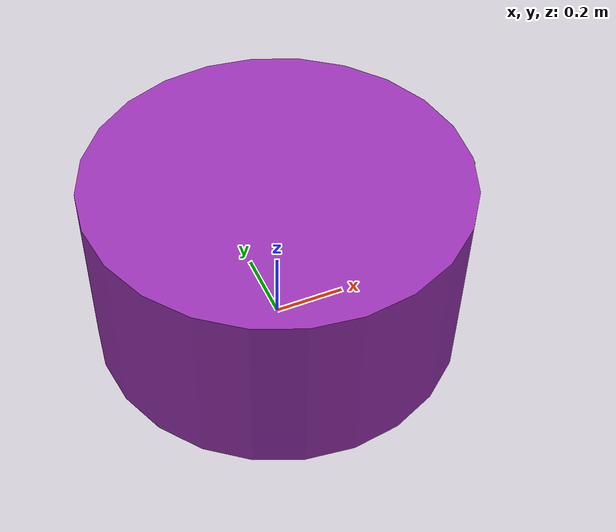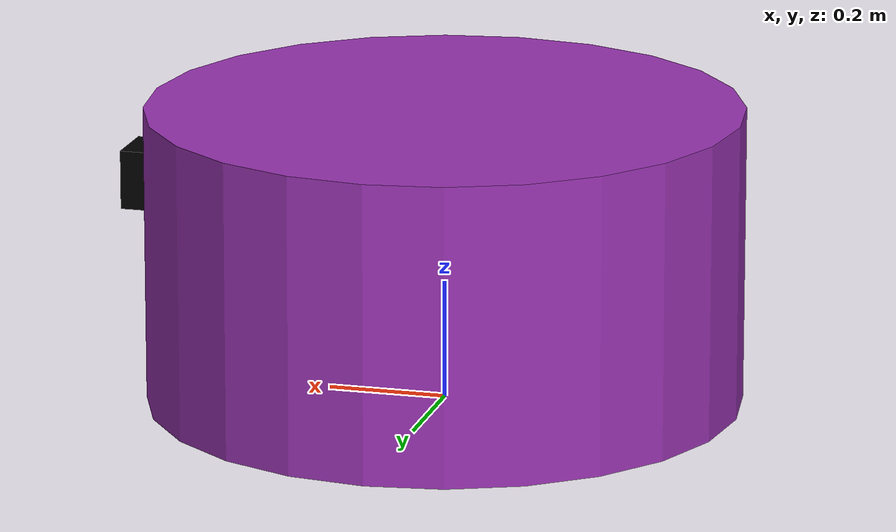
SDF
<?xml version='1.0'?>
<sdf version='1.7'>
  <model name='Dash'>
    <link name='Cyl1'>
      <inertial>
        <mass>1</mass>
        <inertia>
          <ixx>0.145833</ixx>
          <ixy>0</ixy>
          <ixz>0</ixz>
          <iyy>0.145833</iyy>
          <iyz>0</iyz>
          <izz>0.125</izz>
        </inertia>
        <pose>0 0 0 0 -0 0</pose>
      </inertial>
      <pose>0 0 0.25 0 -0 0</pose>
      <gravity>1</gravity>
      <self_collide>0</self_collide>
      <kinematic>0</kinematic>
      <enable_wind>0</enable_wind>
      <visual name='visual'>
        <pose>0 0 0 0 -0 0</pose>
        <geometry>
          <cylinder>
            <radius>0.5</radius>
            <length>0.5</length>
          </cylinder>
        </geometry>
        <material>
          <script>
            <uri>file://media/materials/scripts/gazebo.material</uri>
            <name>Gazebo/Purple</name>
          </script>
          <shader type='pixel'>
            <normal_map>__default__</normal_map>
          </shader>
          <ambient>1 0 1 1</ambient>
          <diffuse>1 0 1 1</diffuse>
          <specular>0.1 0.1 0.1 1</specular>
          <emissive>0 0 0 1</emissive>
        </material>
        <transparency>0</transparency>
        <cast_shadows>1</cast_shadows>
      </visual>
      <collision name='collision'>
        <laser_retro>0</laser_retro>
        <max_contacts>10</max_contacts>
        <pose>0 0 0 0 -0 0</pose>
        <geometry>
          <cylinder>
            <radius>0.5</radius>
            <length>0.5</length>
          </cylinder>
        </geometry>
        <surface>
          <friction>
            <ode>
              <mu>1</mu>
              <mu2>1</mu2>
              <fdir1>0 0 0</fdir1>
              <slip1>0</slip1>
              <slip2>0</slip2>
            </ode>
            <torsional>
              <coefficient>1</coefficient>
              <patch_radius>0</patch_radius>
              <surface_radius>0</surface_radius>
              <use_patch_radius>1</use_patch_radius>
              <ode>
                <slip>0</slip>
              </ode>
            </torsional>
          </friction>
          <bounce>
            <restitution_coefficient>0</restitution_coefficient>
            <threshold>1e+06</threshold>
          </bounce>
          <contact>
            <collide_without_contact>0</collide_without_contact>
            <collide_without_contact_bitmask>1</collide_without_contact_bitmask>
            <collide_bitmask>1</collide_bitmask>
            <ode>
              <soft_cfm>0</soft_cfm>
              <soft_erp>0.2</soft_erp>
              <kp>1e+13</kp>
              <kd>1</kd>
              <max_vel>0.01</max_vel>
              <min_depth>0</min_depth>
            </ode>
            <bullet>
              <split_impulse>1</split_impulse>
              <split_impulse_penetration_threshold>-0.01</split_impulse_penetration_threshold>
              <soft_cfm>0</soft_cfm>
              <soft_erp>0.2</soft_erp>
              <kp>1e+13</kp>
              <kd>1</kd>
            </bullet>
          </contact>
        </surface>
      </collision>
    </link>
    <link name='cam_link'>
      <pose>0 0 0.1 0 -0 0</pose>
      <inertial>
        <mass>0.1</mass>
        <inertia>
          <ixx>1</ixx>
          <ixy>0</ixy>
          <ixz>0</ixz>
          <iyy>1</iyy>
          <iyz>0</iyz>
          <izz>1</izz>
        </inertia>
        <pose>0.5 0 0.25 0 -0 0</pose>
      </inertial>
      <self_collide>0</self_collide>
      <kinematic>0</kinematic>
      <sensor name='camera1' type='camera'>
        <pose>0.5 0 0.25 0 -0 0</pose>
        <camera name='head'>
          <horizontal_fov>1.39626</horizontal_fov>
          <image>
            <width>800</width>
            <height>800</height>
            <format>R8G8B8</format>
          </image>
          <clip>
            <near>0.02</near>
            <far>300</far>
          </clip>
        </camera>
        <plugin name='camera_controller' filename='libgazebo_ros_camera.so'>
          <alwaysOn>1</alwaysOn>
          <updateRate>0.0</updateRate>
          <cameraName>camera</cameraName>
          <imageTopicName>rgb/image_raw</imageTopicName>
          <cameraInfoTopicName>rgb/camera_info</cameraInfoTopicName>
          <frameName>camera</frameName>
          <hackBaseline>0.07</hackBaseline>
          <distortionK1>0.0</distortionK1>
          <distortionK2>0.0</distortionK2>
          <distortionK3>0.0</distortionK3>
          <distortionT1>0.0</distortionT1>
          <distortionT2>0.0</distortionT2>
          <robotNamespace>/</robotNamespace>
        </plugin>
      </sensor>
      <enable_wind>0</enable_wind>
      <gravity>1</gravity>
      <visual name='camera_visual'>
        <pose>0.5 0 0.25 0 -0 0</pose>
        <geometry>
          <box>
            <size>0.1 0.1 0.1</size>
          </box>
        </geometry>
        <material>
          <ambient>0 0 0 1</ambient>
          <diffuse>0 0 0 1</diffuse>
          <specular>0 0 0 1</specular>
          <emissive>0 0 0 1</emissive>
          <shader type='pixel'>
            <normal_map>__default__</normal_map>
          </shader>
          <script>
            <name>ModelPreview_1::cam_link::camera_visual_MATERIAL_</name>
            <uri>__default__</uri>
          </script>
        </material>
        <transparency>0</transparency>
        <cast_shadows>1</cast_shadows>
      </visual>
    </link>
    <joint name='cam_joint' type='fixed'>
      <parent>Cyl1</parent>
      <child>cam_link</child>
      <pose>0.5 0 0.25 0 -0 0</pose>
      <physics>
        <ode>
          <limit>
            <cfm>0</cfm>
            <erp>0.2</erp>
          </limit>
          <suspension>
            <cfm>0</cfm>
            <erp>0.2</erp>
          </suspension>
        </ode>
      </physics>
    </joint>
    <static>1</static>
    <allow_auto_disable>1</allow_auto_disable>
  </model>
</sdf>
